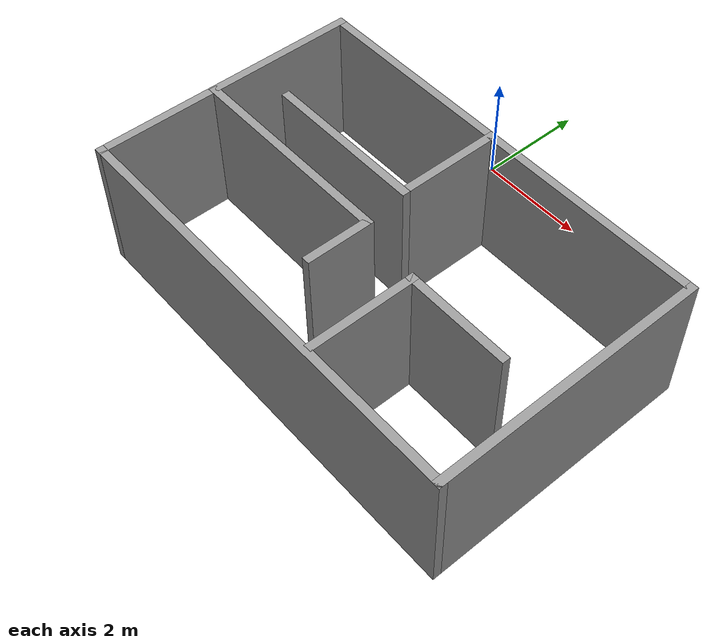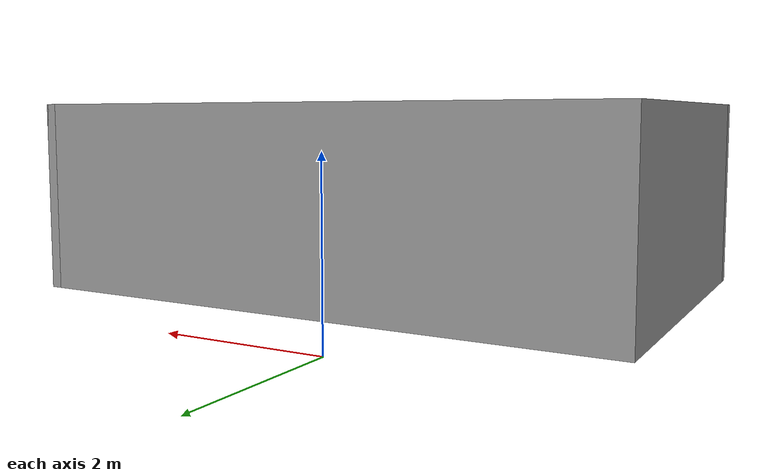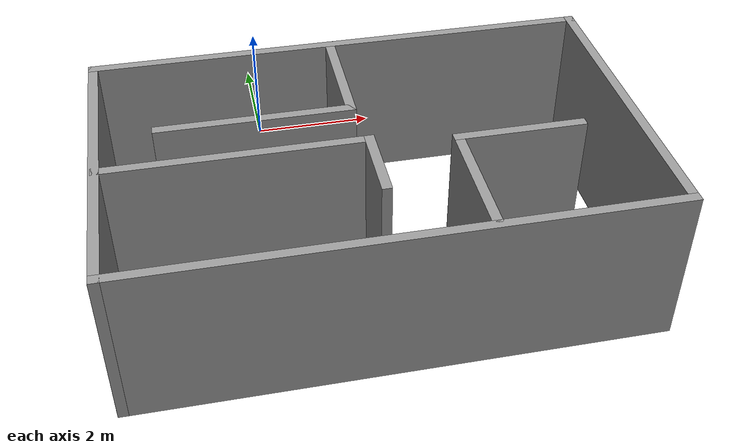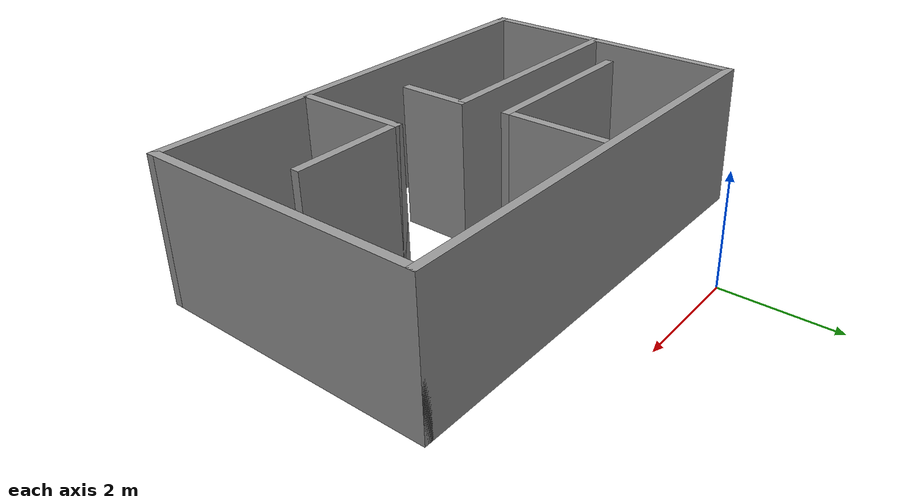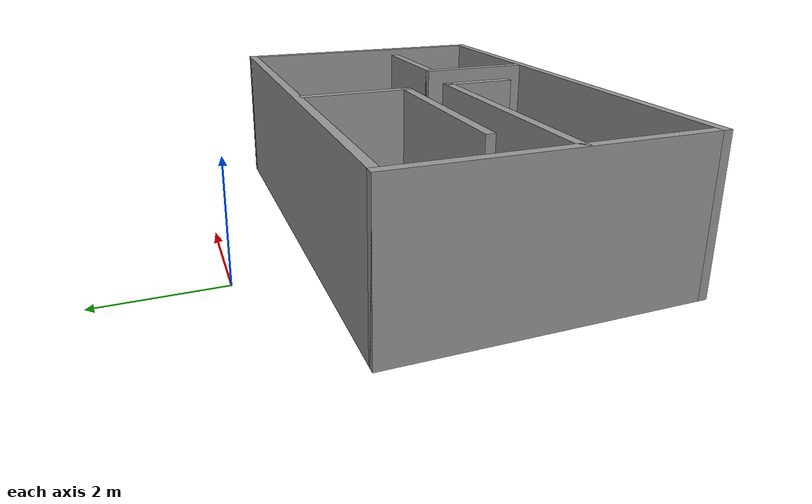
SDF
<?xml version='1.0'?>
<sdf version='1.7'>
  <model name='room'>
    <pose>1.295 -3.1325 0 0 -0 0</pose>
    <link name='Wall_10'>
      <collision name='Wall_10_Collision'>
        <geometry>
          <box>
            <size>5 0.15 2.5</size>
          </box>
        </geometry>
        <pose>0 0 1.25 0 -0 0</pose>
      </collision>
      <visual name='Wall_10_Visual'>
        <pose>0 0 1.25 0 -0 0</pose>
        <geometry>
          <box>
            <size>5 0.15 2.5</size>
          </box>
        </geometry>
        <material>
          <script>
            <uri>file://media/materials/scripts/gazebo.material</uri>
            <name>Gazebo/Grey</name>
          </script>
          <ambient>1 1 1 1</ambient>
        </material>
        <meta>
          <layer>0</layer>
        </meta>
      </visual>
      <pose>-3.925 -0.6325 0 0 -0 1.5708</pose>
    </link>
    <link name='Wall_12'>
      <collision name='Wall_12_Collision'>
        <geometry>
          <box>
            <size>2 0.15 2.5</size>
          </box>
        </geometry>
        <pose>0 0 1.25 0 -0 0</pose>
      </collision>
      <visual name='Wall_12_Visual'>
        <pose>0 0 1.25 0 -0 0</pose>
        <geometry>
          <box>
            <size>2 0.15 2.5</size>
          </box>
        </geometry>
        <material>
          <script>
            <uri>file://media/materials/scripts/gazebo.material</uri>
            <name>Gazebo/Grey</name>
          </script>
          <ambient>1 1 1 1</ambient>
        </material>
        <meta>
          <layer>0</layer>
        </meta>
      </visual>
      <pose>-0.171144 0.865591 0 0 -0 -1.5708</pose>
    </link>
    <link name='Wall_13'>
      <collision name='Wall_13_Collision'>
        <geometry>
          <box>
            <size>3 0.15 2.5</size>
          </box>
        </geometry>
        <pose>0 0 1.25 0 -0 0</pose>
      </collision>
      <visual name='Wall_13_Visual'>
        <pose>0 0 1.25 0 -0 0</pose>
        <geometry>
          <box>
            <size>3 0.15 2.5</size>
          </box>
        </geometry>
        <material>
          <script>
            <uri>file://media/materials/scripts/gazebo.material</uri>
            <name>Gazebo/Grey</name>
          </script>
          <ambient>1 1 1 1</ambient>
        </material>
        <meta>
          <layer>0</layer>
        </meta>
      </visual>
      <pose>-1.59614 -0.059409 0 0 -0 3.14159</pose>
    </link>
    <link name='Wall_18'>
      <collision name='Wall_18_Collision'>
        <geometry>
          <box>
            <size>4 0.15 2.5</size>
          </box>
        </geometry>
        <pose>0 0 1.25 0 -0 0</pose>
      </collision>
      <visual name='Wall_18_Visual'>
        <pose>0 0 1.25 0 -0 0</pose>
        <geometry>
          <box>
            <size>4 0.15 2.5</size>
          </box>
        </geometry>
        <material>
          <script>
            <uri>file://media/materials/scripts/gazebo.material</uri>
            <name>Gazebo/Grey</name>
          </script>
          <ambient>1 1 1 1</ambient>
        </material>
        <meta>
          <layer>0</layer>
        </meta>
      </visual>
      <pose>-1.97753 -0.886196 0 0 -0 0</pose>
    </link>
    <link name='Wall_19'>
      <collision name='Wall_19_Collision'>
        <geometry>
          <box>
            <size>1.25 0.15 2.5</size>
          </box>
        </geometry>
        <pose>0 0 1.25 0 -0 0</pose>
      </collision>
      <visual name='Wall_19_Visual'>
        <pose>0 0 1.25 0 -0 0</pose>
        <geometry>
          <box>
            <size>1.25 0.15 2.5</size>
          </box>
        </geometry>
        <material>
          <script>
            <uri>file://media/materials/scripts/gazebo.material</uri>
            <name>Gazebo/Grey</name>
          </script>
          <ambient>1 1 1 1</ambient>
        </material>
        <meta>
          <layer>0</layer>
        </meta>
      </visual>
      <pose>-0.052526 -1.4362 0 0 -0 -1.5708</pose>
    </link>
    <link name='Wall_23'>
      <collision name='Wall_23_Collision'>
        <geometry>
          <box>
            <size>2 0.15 2.5</size>
          </box>
        </geometry>
        <pose>0 0 1.25 0 -0 0</pose>
      </collision>
      <visual name='Wall_23_Visual'>
        <pose>0 0 1.25 0 -0 0</pose>
        <geometry>
          <box>
            <size>2 0.15 2.5</size>
          </box>
        </geometry>
        <material>
          <script>
            <uri>file://media/materials/scripts/gazebo.material</uri>
            <name>Gazebo/Grey</name>
          </script>
          <ambient>1 1 1 1</ambient>
        </material>
        <meta>
          <layer>0</layer>
        </meta>
      </visual>
      <pose>1.2035 -2.02468 0 0 -0 1.5708</pose>
    </link>
    <link name='Wall_24'>
      <collision name='Wall_24_Collision'>
        <geometry>
          <box>
            <size>2 0.15 2.5</size>
          </box>
        </geometry>
        <pose>0 0 1.25 0 -0 0</pose>
      </collision>
      <visual name='Wall_24_Visual'>
        <pose>0 0 1.25 0 -0 0</pose>
        <geometry>
          <box>
            <size>2 0.15 2.5</size>
          </box>
        </geometry>
        <material>
          <script>
            <uri>file://media/materials/scripts/gazebo.material</uri>
            <name>Gazebo/Grey</name>
          </script>
          <ambient>1 1 1 1</ambient>
        </material>
        <meta>
          <layer>0</layer>
        </meta>
      </visual>
      <pose>2.1285 -1.09968 0 0 -0 0</pose>
    </link>
    <link name='Wall_7'>
      <collision name='Wall_7_Collision'>
        <geometry>
          <box>
            <size>8 0.15 2.5</size>
          </box>
        </geometry>
        <pose>0 0 1.25 0 -0 0</pose>
      </collision>
      <visual name='Wall_7_Visual'>
        <pose>0 0 1.25 0 -0 0</pose>
        <geometry>
          <box>
            <size>8 0.15 2.5</size>
          </box>
        </geometry>
        <material>
          <script>
            <uri>file://media/materials/scripts/gazebo.material</uri>
            <name>Gazebo/Grey</name>
          </script>
          <ambient>1 1 1 1</ambient>
        </material>
        <meta>
          <layer>0</layer>
        </meta>
      </visual>
      <pose>0 1.7925 0 0 -0 0</pose>
    </link>
    <link name='Wall_8'>
      <collision name='Wall_8_Collision'>
        <geometry>
          <box>
            <size>5 0.15 2.5</size>
          </box>
        </geometry>
        <pose>0 0 1.25 0 -0 0</pose>
      </collision>
      <visual name='Wall_8_Visual'>
        <pose>0 0 1.25 0 -0 0</pose>
        <geometry>
          <box>
            <size>5 0.15 2.5</size>
          </box>
        </geometry>
        <material>
          <script>
            <uri>file://media/materials/scripts/gazebo.material</uri>
            <name>Gazebo/Grey</name>
          </script>
          <ambient>1 1 1 1</ambient>
        </material>
        <meta>
          <layer>0</layer>
        </meta>
      </visual>
      <pose>3.925 -0.6325 0 0 -0 -1.5708</pose>
    </link>
    <link name='Wall_9'>
      <collision name='Wall_9_Collision'>
        <geometry>
          <box>
            <size>8 0.15 2.5</size>
          </box>
        </geometry>
        <pose>0 0 1.25 0 -0 0</pose>
      </collision>
      <visual name='Wall_9_Visual'>
        <pose>0 0 1.25 0 -0 0</pose>
        <geometry>
          <box>
            <size>8 0.15 2.5</size>
          </box>
        </geometry>
        <material>
          <script>
            <uri>file://media/materials/scripts/gazebo.material</uri>
            <name>Gazebo/Grey</name>
          </script>
          <ambient>1 1 1 1</ambient>
        </material>
        <meta>
          <layer>0</layer>
        </meta>
      </visual>
      <pose>0 -3.0575 0 0 -0 3.14159</pose>
    </link>
    <static>1</static>
  </model>
</sdf>
